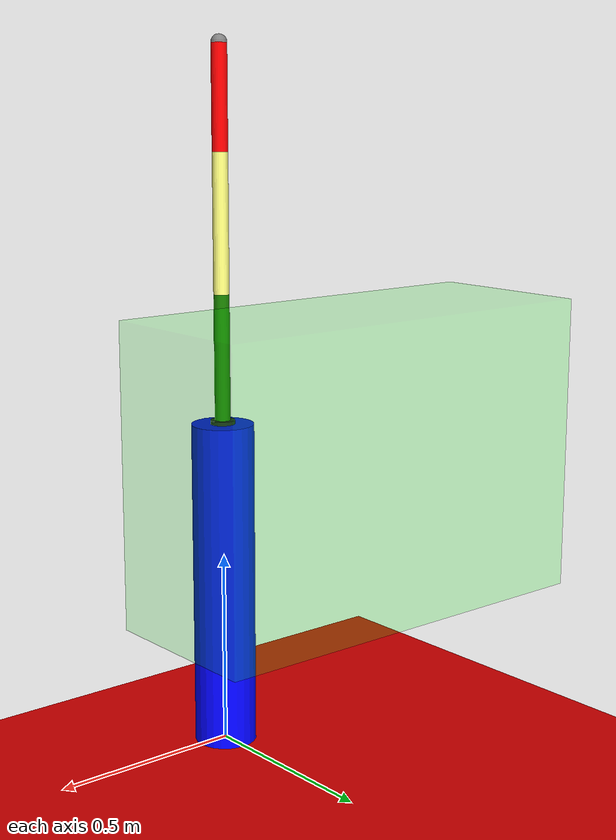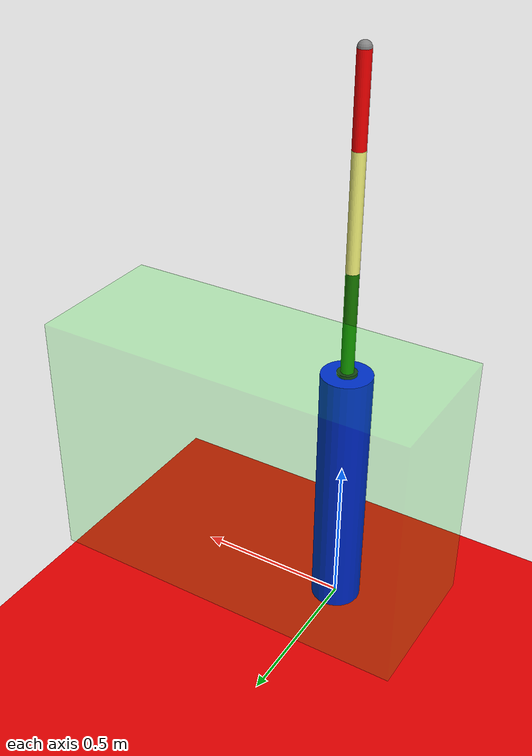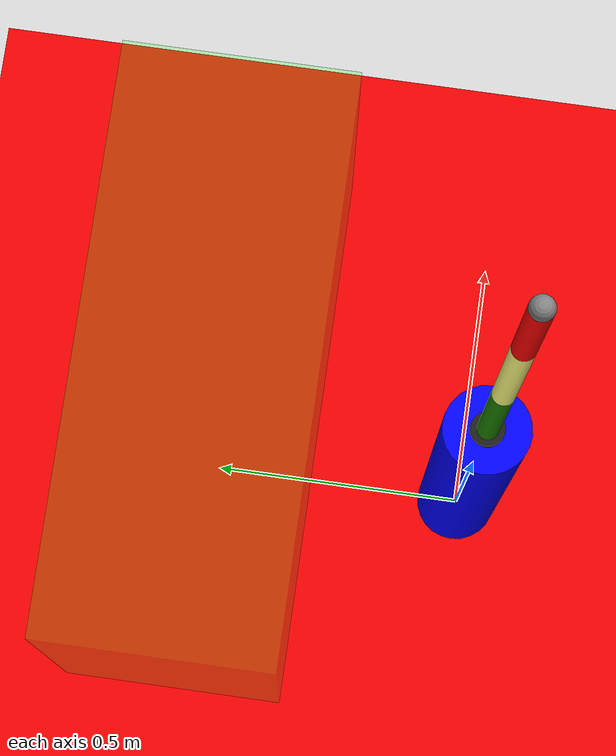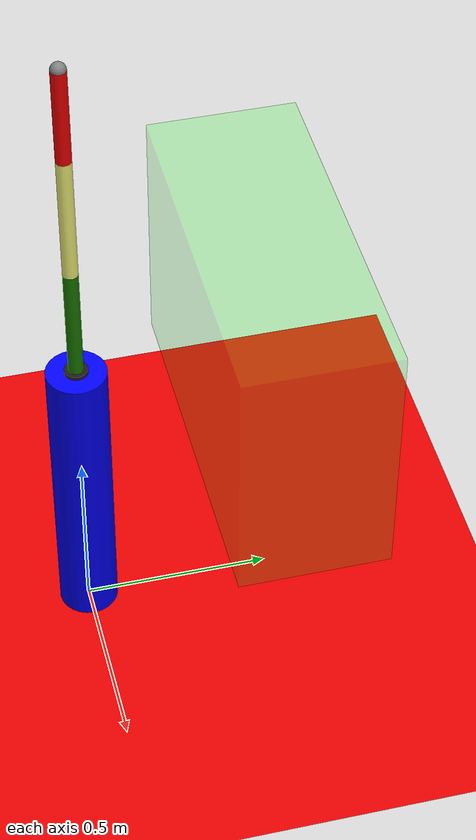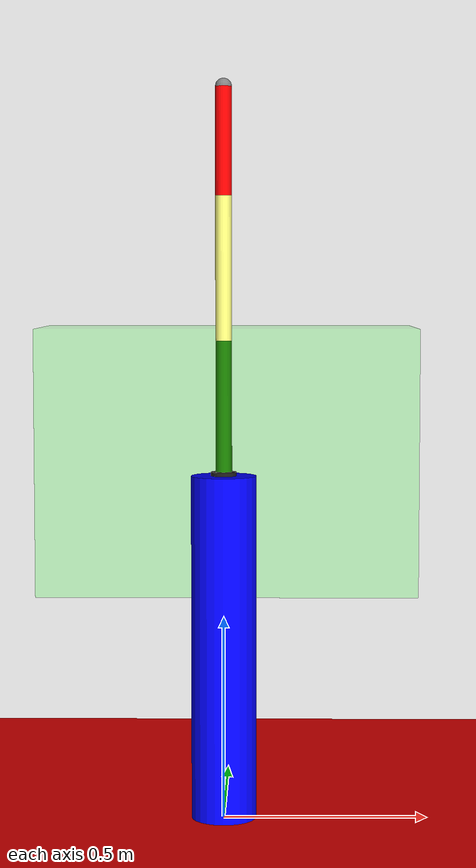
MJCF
<mujoco>
	<compiler autolimits="true" eulerseq="XYZ"/>
	<contact>
        <exclude name="exclude_bounding_box" body1="link3" body2="bounding box"/>
		<exclude name="exclude_bounding_box1" body1="link4" body2="bounding box"/>
		<exclude name="exclude_bounding_box2" body1="link2" body2="bounding box"/>
	</contact>

	<worldbody>

        <light diffuse=".5 .5 .5" pos="0 0 3" dir="0 0 -2"/>
		<geom type="plane" size="2 2 0.1" rgba=".9 0 0 1"/>
		<body name="base" pos="0 0 0.425" euler = "0 0 0">
			<geom type="cylinder" size=".08 0.425 " rgba="0 0 1 1" />
			<body name = "link1" pos="0 0 0.425" euler = "0 0 0">
				<joint name="1" type="hinge" pos="0 0 -.01" axis="0 0 1" limited= "true" range= "-180 180"/>
				<geom type="cylinder" size=".03125 0.01 " rgba=".110 .105 .105  1" />
				<body name= "link2" pos="0 0 0.17" euler = "0 0 0">
					<joint name="2" type="hinge" pos="0 0 -0.16" axis="0 1 0" limited= "true" range= "-80 80"/>
					<geom type="cylinder" size=".02 0.16 " rgba=".1 .5 0  1" />
					<body name= "link3" pos="0 0 0.335" euler = "0 0 0">
						<joint name="3" type="hinge" pos="0 0 -0.175" axis="0 1 0" limited= "true" range= "-80 80"/>
						<geom type="cylinder" size=".02 0.175 " rgba="1 1 .5  1" />
						<body name= "link4" pos="0 0 0.305" euler = "0 0 0">
							<joint name="4" type="hinge" pos="0 0 -0.13" axis="0 1 0" limited= "true" range= "-80 80"/>
							<geom type="cylinder" size=".02 0.13 " rgba="1 0 0  1" />
							<site name="tip" size="0.02" pos="0 0 0.13"/>
						</body>
					</body>
				</body>
			</body>
		</body>
		<body name="bounding box" pos="0 0.5 0.85" euler = "0 0 0">
			<geom type="box" size=".5 .2 .35" rgba="0 1 0 0.1" />
		</body>
	</worldbody>
	<actuator>
			<motor joint="1" name="t1" gear="1" ctrllimited="true" ctrlrange="-10 10"/>
            <motor joint="2" name="t2" gear="1" ctrllimited="true" ctrlrange="-10 10"/>
            <motor joint="3" name="t3" gear="1" ctrllimited="true" ctrlrange="-10 10"/>
            <motor joint="4" name="t4" gear="1" ctrllimited="true" ctrlrange="-10 10"/>
            -->
            -->
	</actuator>

</mujoco>

<!-- sensor/ jointlimitfrc (*) -->
